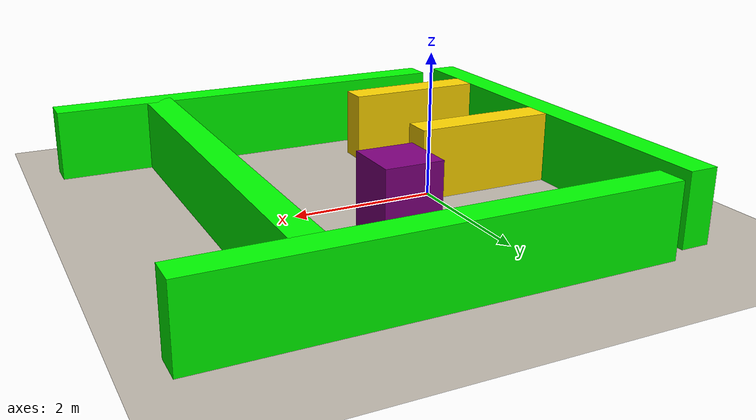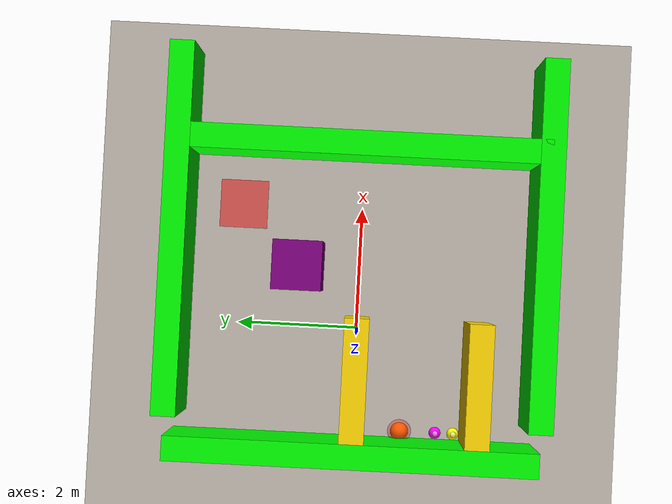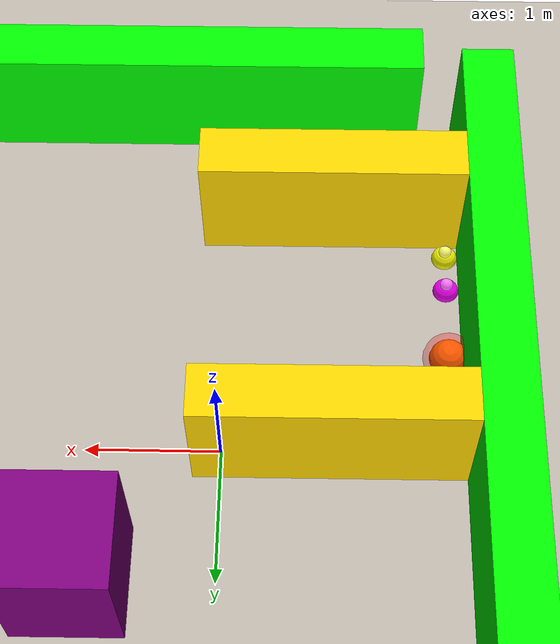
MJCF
\\<mujoco model="swarm_robots">
    <compiler angle="radian"/>
    <option timestep="0.01"/>

    <asset>
        <texture name="checkered" type="2d" builtin="checker" rgb1="0.9 0.9 0.9" rgb2="0.7 0.7 0.7" width="256" height="256"/>
        <material name="wall_material" rgba="0 1 0 1"/>
        <material name="yellow_wall_material" rgba="1 0.84 0 1"/>
       <material name="obstacle_material" rgba="0.5 0 0.5 1"/>
        <texture name="ground_texture" type="2d" file="ground.png"/>
        <material name="ground_material" texture="ground_texture"/>
    </asset>

    <visual>
        <headlight diffuse="0.8 0.8 0.8" ambient="0.3 0.3 0.3" specular="0.5 0.5 0.5"/>
    </visual>

    <worldbody>
        <camera name="top_view" pos="0 0 5" xyaxes="1 0 0 0 1 0"/>
        <geom name="floor" type="plane" size="5 5 0.1" material="ground_material"/>

        <!-- Walls with collision avoidance parameters -->
        <geom name="wall_north" type="box" pos="1.5 3 0.5" size="3 0.2 0.5" material="wall_material" margin="0.05" solref="0.02 1" solimp="0.8 0.9 0.01"/>
        <geom name="wall_south" type="box" pos="1.5 -3 0.5" size="3 0.2 0.5" material="wall_material" margin="0.05" solref="0.02 1" solimp="0.8 0.9 0.01"/>
         <geom name="wall_west" type="box" pos="-2 0 0.5" size="0.2 3 0.5" material="wall_material" margin="0.05" solref="0.02 1" solimp="0.8 0.9 0.01"/>
        <geom name="wall_east" type="box" pos="3 0 0.5" size="0.2 3 0.5" material="wall_material" margin="0.05" solref="0.02 1" solimp="0.8 0.9 0.01"/>
        <geom name="small_room_wall2" type="box" pos="-0.8 -2 0.5" size="1 0.2 0.5" material="yellow_wall_material" margin="0.05" solref="0.02 1" solimp="0.8 0.9 0.01"/>
         <geom name="small_room_wall3" type="box" pos="-0.8 0 0.5" size="1 0.2 0.5" material="yellow_wall_material" margin="0.05" solref="0.02 1" solimp="0.8 0.9 0.01"/>
<body name="central_obstacle" pos="1 1 0.5">
        <geom type="box" size="0.4 0.4 0.5" material="obstacle_material"
              contype="1" conaffinity="1" margin="0.05"
              solref="0.02 1" solimp="0.8 0.9 0.01"/>
    </body>
   <body name="goal" pos="2 2 0">
    <geom type="box" size="0.4 0.4 0.01" rgba="1 0 0 0.5" contype="0" conaffinity="0"/>
    <site name="goal_sensor" type="cylinder" size="0.5 0.01" rgba="0 0 0 0"/>
</body>
        <!-- Robot swarm with collision avoidance -->
        <body name="robot1" pos="-2 -2 0">
            <joint name="robot1_x" type="slide" axis="1 0 0"/>
            <joint name="robot1_y" type="slide" axis="0 1 0"/>
            <geom type="sphere" size="0.1" rgba="0 0 1 1" margin="0.05" solref="0.02 1" solimp="0.8 0.9 0.01"/>
            <site name="robot1_sensor" pos="0 0 0.1" size="0.05" type="sphere" rgba="1 1 1 0.5"/>
        </body>

        <body name="robot2" pos="-2 -1.7 0">
            <joint name="robot2_x" type="slide" axis="1 0 0"/>
            <joint name="robot2_y" type="slide" axis="0 1 0"/>
            <geom type="sphere" size="0.1" rgba="0 1 0 1" margin="0.05" solref="0.02 1" solimp="0.8 0.9 0.01"/>
            <site name="robot2_sensor" pos="0 0 0.1" size="0.05" type="sphere" rgba="1 1 1 0.5"/>
        </body>

        <body name="robot3" pos="-1.7 -1.7 0">
            <joint name="robot3_x" type="slide" axis="1 0 0"/>
            <joint name="robot3_y" type="slide" axis="0 1 0"/>
            <geom type="sphere" size="0.1" rgba="1 1 0 1" margin="0.05" solref="0.02 1" solimp="0.8 0.9 0.01"/>
            <site name="robot3_sensor" pos="0 0 0.1" size="0.05" type="sphere" rgba="1 1 1 0.5"/>
        </body>

        <body name="robot4" pos="-0.5 -2 0">
            <joint name="robot4_x" type="slide" axis="1 0 0"/>
            <joint name="robot4_y" type="slide" axis="0 1 0"/>
            <geom type="sphere" size="0.1" rgba="1 0 1 1" margin="0.05" solref="0.02 1" solimp="0.8 0.9 0.01"/>
            <site name="robot4_sensor" pos="0 0 0.1" size="0.05" type="sphere" rgba="1 1 1 0.5"/>
        </body>

        <body name="robot5" pos="-2 -1.4 0">
            <joint name="robot5_x" type="slide" axis="1 0 0"/>
            <joint name="robot5_y" type="slide" axis="0 1 0"/>
            <geom type="sphere" size="0.1" rgba="0 1 1 1" margin="0.05" solref="0.02 1" solimp="0.8 0.9 0.01"/>
            <site name="robot5_sensor" pos="0 0 0.1" size="0.05" type="sphere" rgba="1 1 1 0.5"/>
        </body>

        <body name="robot6" pos="-1.7 -1.4 0">
            <joint name="robot6_x" type="slide" axis="1 0 0"/>
            <joint name="robot6_y" type="slide" axis="0 1 0"/>
            <geom type="sphere" size="0.1" rgba="1 0 1 1" margin="0.05" solref="0.02 1" solimp="0.8 0.9 0.01"/>
            <site name="robot6_sensor" pos="0 0 0.1" size="0.05" type="sphere" rgba="1 1 1 0.5"/>
        </body>

<body name="robot8" pos="-2 -0.8 0">
            <joint name="robot8_x" type="slide" axis="1 0 0"/>
            <joint name="robot8_y" type="slide" axis="0 1 0"/>
            <geom type="sphere" size="0.15" rgba="1 0.5 0 1"
                  margin="0.08" solref="0.05 1" solimp="0.9 0.95 0.01"/>
            <site name="robot8_sensor" type="sphere" size="0.2" rgba="1 0 0 0.3"/>
        </body>

        <body name="robot9" pos="-1.7 -0.8 0">
            <joint name="robot9_x" type="slide" axis="1 0 0"/>
            <joint name="robot9_y" type="slide" axis="0 1 0"/>
             <geom type="sphere" size="0.15" rgba="1 0.5 0 1"
                  margin="0.08" solref="0.05 1" solimp="0.9 0.95 0.01"/>
            <site name="robot9_sensor" type="sphere" size="0.2" rgba="1 0 0 0.3"/>
        </body>

        <body name="robot10" pos="-1.7 -0.8 0">
            <joint name="robot10_x" type="slide" axis="1 0 0"/>
            <joint name="robot10_y" type="slide" axis="0 1 0"/>
             <geom type="sphere" size="0.15" rgba="1 0.5 0 1"
                  margin="0.08" solref="0.05 1" solimp="0.9 0.95 0.01"/>
            <site name="robot10_sensor" type="sphere" size="0.2" rgba="1 0 0 0.3"/>
         </body>

        <body name="robot11" pos="-1.7 -1.4 0">
            <joint name="robot11_x" type="slide" axis="1 0 0"/>
            <joint name="robot11_y" type="slide" axis="0 1 0"/>
            <geom type="sphere" size="0.1" rgba="1 0 1 1" margin="0.05" solref="0.02 1" solimp="0.8 0.9 0.01"/>
            <site name="robot11_sensor" pos="0 0 0.1" size="0.05" type="sphere" rgba="1 1 1 0.5"/>
        </body>

        <body name="robot12" pos="-1.7 -1.4 0">
            <joint name="robot12_x" type="slide" axis="1 0 0"/>
            <joint name="robot12_y" type="slide" axis="0 1 0"/>
            <geom type="sphere" size="0.1" rgba="1 0 1 1" margin="0.05" solref="0.02 1" solimp="0.8 0.9 0.01"/>
            <site name="robot12_sensor" pos="0 0 0.1" size="0.05" type="sphere" rgba="1 1 1 0.5"/>
        </body>

        <body name="robot13" pos="-1.7 -1.4 0">
            <joint name="robot13_x" type="slide" axis="1 0 0"/>
            <joint name="robot13_y" type="slide" axis="0 1 0"/>
            <geom type="sphere" size="0.1" rgba="1 0 1 1" margin="0.05" solref="0.02 1" solimp="0.8 0.9 0.01"/>
            <site name="robot13_sensor" pos="0 0 0.1" size="0.05" type="sphere" rgba="1 1 1 0.5"/>
        </body>
    </worldbody>

    <actuator>
    <motor joint="robot1_x" ctrlrange="-100 100"/>
    <motor joint="robot1_y" ctrlrange="-100 100"/>
    <motor joint="robot2_x" ctrlrange="-100 100"/>
    <motor joint="robot2_y" ctrlrange="-100 100"/>
    <motor joint="robot3_x" ctrlrange="-100 100"/>
    <motor joint="robot3_y" ctrlrange="-100 100"/>
    <motor joint="robot4_x" ctrlrange="-100 100"/>
    <motor joint="robot4_y" ctrlrange="-100 100"/>
    <motor joint="robot5_x" ctrlrange="-100 100"/>
    <motor joint="robot5_y" ctrlrange="-100 100"/>
    <motor joint="robot6_x" ctrlrange="-100 100"/>
    <motor joint="robot6_y" ctrlrange="-100 100"/>
    <motor joint="robot8_x" ctrlrange="-100 100"/>
    <motor joint="robot8_y" ctrlrange="-100 100"/>
    <motor joint="robot9_x" ctrlrange="-100 100"/>
    <motor joint="robot9_y" ctrlrange="-100 100"/>
    <motor joint="robot10_x" ctrlrange="-100 100"/>
    <motor joint="robot10_y" ctrlrange="-100 100"/>
    <motor joint="robot11_x" ctrlrange="-100 100"/>
    <motor joint="robot11_y" ctrlrange="-100 100"/>
    <motor joint="robot12_x" ctrlrange="-100 100"/>
    <motor joint="robot12_y" ctrlrange="-100 100"/>
    <motor joint="robot13_x" ctrlrange="-100 100"/>
    <motor joint="robot13_y" ctrlrange="-100 100"/>
</actuator>
<sensor>
        <touch name="goal_trigger" site="goal_sensor"/>
    </sensor>
<equality>
    <!-- Robot2 follows Robot1 with X offset -->
    <weld name="triangle_formation1"
          body1="robot1"
          body2="robot2"
          relpose="0.3 0 0 1 0 0 0"
          solref="0.02 1"
          solimp="0.9 0.95 0.001"/>

    <!-- Robot3 follows Robot1 with Y offset -->
    <weld name="triangle_formation2"
          body1="robot1"
          body2="robot3"
          relpose="0 0.3 0 1 0 0 0"
          solref="0.02 1"
          solimp="0.9 0.95 0.001"/>
     <weld name="formation1"
          body1="robot11"
          body2="robot12"
          relpose="0.3 0.3 0 1 0 0 0"
          solref="0.02 1"
          solimp="0.9 0.95 0.001"/>

    <!-- Robot13: Left-front of Robot11 -->
    <weld name="formation2"
          body1="robot11"
          body2="robot13"
          relpose="0.3 -0.3 0 1 0 0 0"
          solref="0.02 1"
          solimp="0.9 0.95 0.001"/>
          <weld name="formation4_5"
          body1="robot4"
          body2="robot5"
          relpose="0.3 0.3 0 1 0 0 0"
          solref="0.02 1"
          solimp="0.9 0.95 0.001"/>

    <!-- Robot6: Left-front of Robot4 -->
    <weld name="formation4_6"
          body1="robot4"
          body2="robot6"
          relpose="0.3 -0.3 0 1 0 0 0"
          solref="0.02 1"
          solimp="0.9 0.95 0.001"/>
</equality>
</mujoco>
